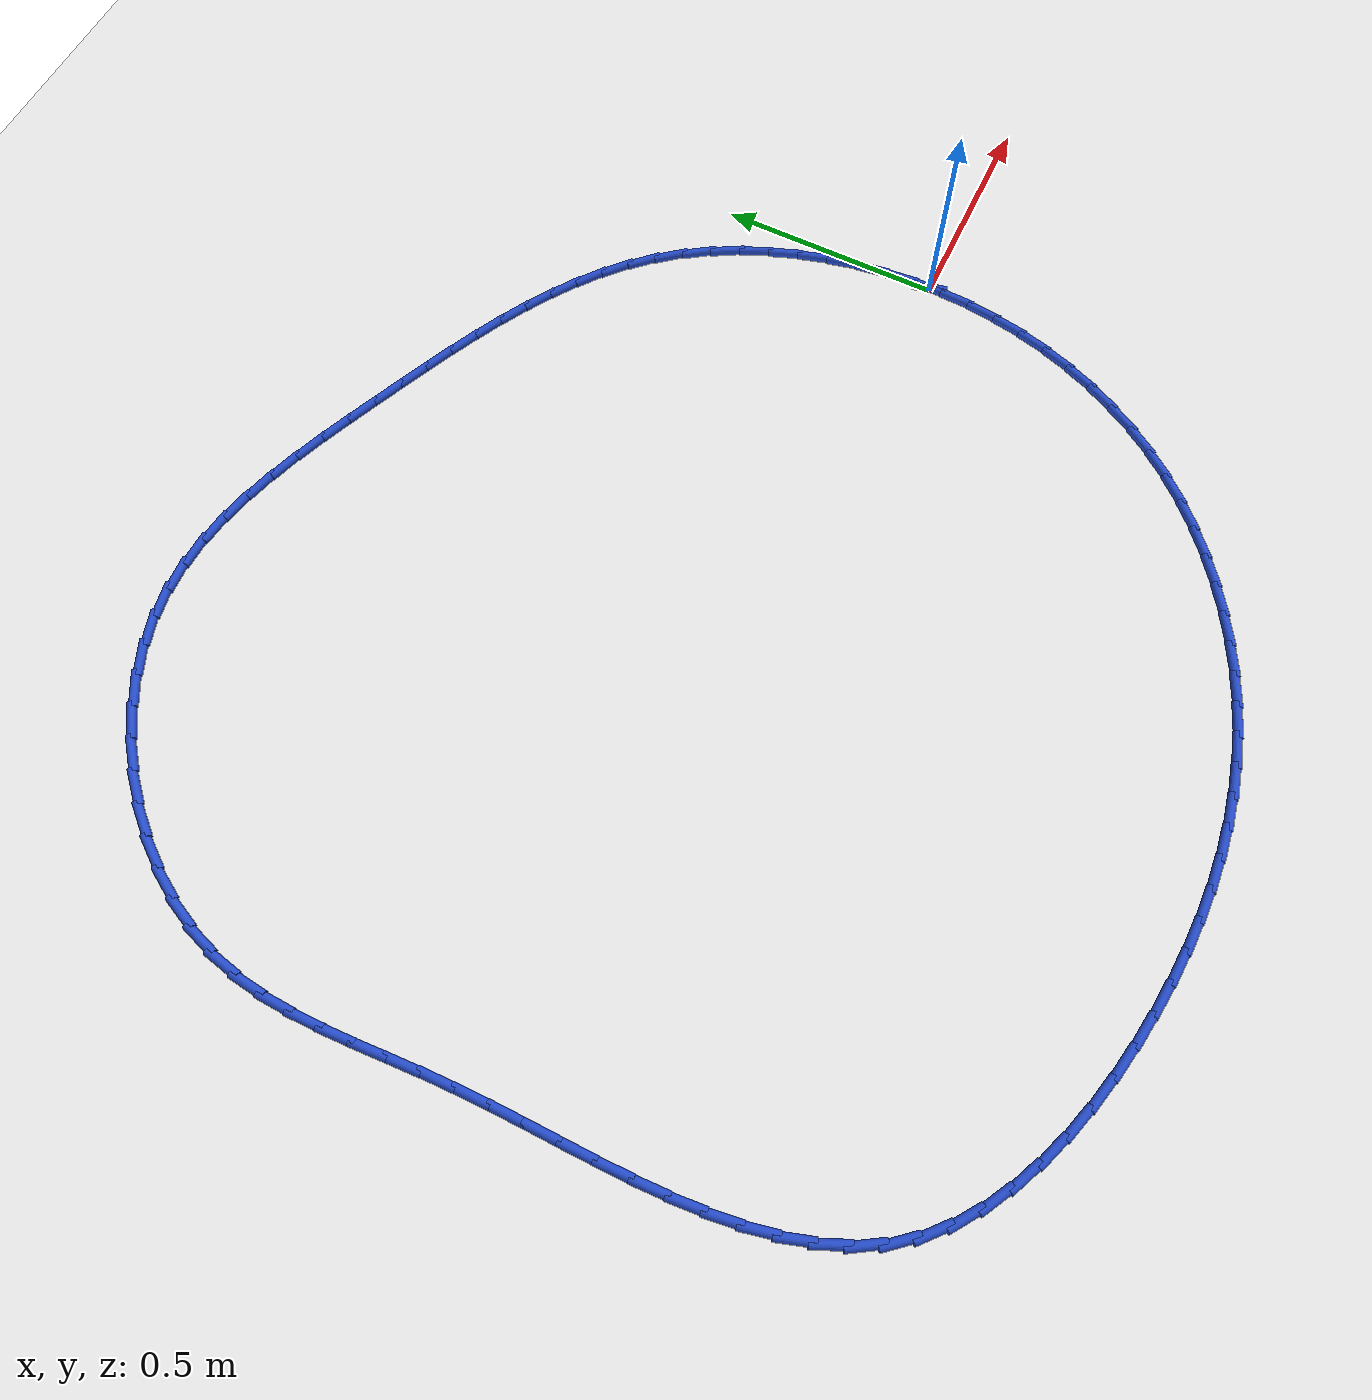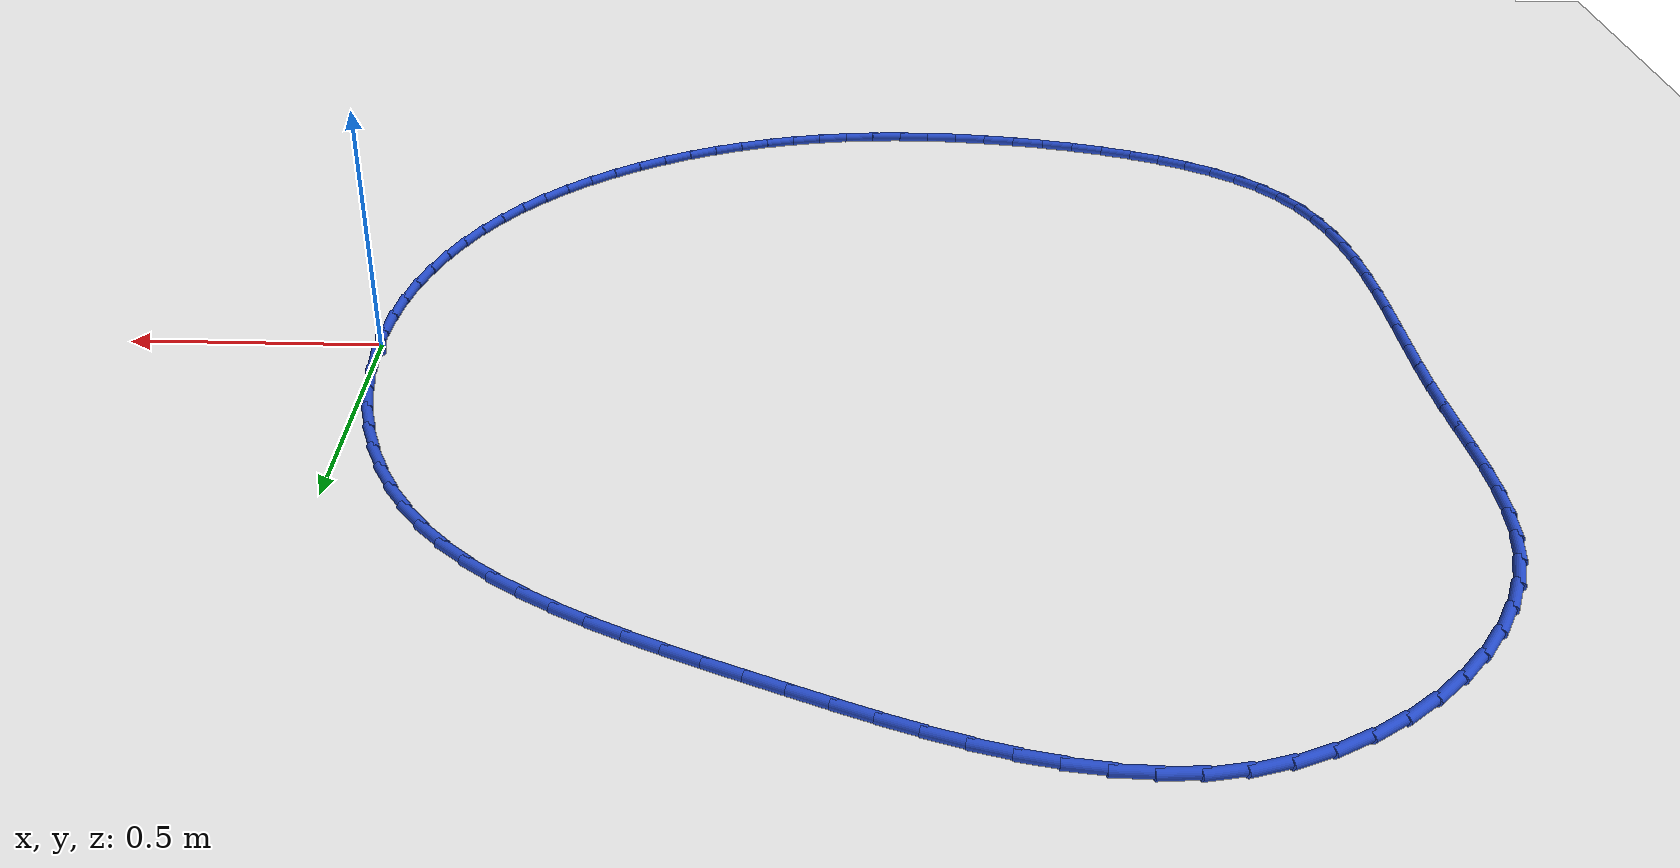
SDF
<sdf version="1.6">
 <world name="default">
  <light name="sun" type="directional">
   <pose>0 0 10 0 -0 0</pose>
   <diffuse>0.8 0.8 0.8 1</diffuse>
   <specular>0.2 0.2 0.2 1</specular>
   <attenuation>
    <range>1000</range>
    <constant>0.9</constant>
    <linear>0.01</linear>
    <quadratic>0.001</quadratic>
   </attenuation>
   <direction>-0.5 0.1 -0.9</direction>
  </light>
  <model name="ground_plane">
   <static>1</static>
   <link name="link">
    <collision name="collision">
     <geometry><plane><normal>0 0 1</normal><size>100 100</size></plane></geometry>
     <surface><friction><ode><mu>100</mu><mu2>50</mu2></ode></friction></surface>
    </collision>
    <visual name="visual">
     <cast_shadows>0</cast_shadows>
     <geometry><plane><normal>0 0 1</normal><size>100 100</size></plane></geometry>
     <material>
      <script><uri>file://media/materials/scripts/gazebo.material</uri><name>Gazebo/WhiteGlow</name></script>
     </material>
    </visual>
   </link>
  </model>
  <gravity>0 0 -9.8</gravity>
  <magnetic_field>6e-06 2.3e-05 -4.2e-05</magnetic_field>
  <atmosphere type="adiabatic"/>
  <physics name="default_physics" default="0" type="ode">
   <max_step_size>0.001</max_step_size>
   <real_time_factor>1</real_time_factor>
   <real_time_update_rate>1000</real_time_update_rate>
  </physics>
  <scene><ambient>0.4 0.4 0.4 1</ambient><background>0.7 0.7 0.7 1</background><shadows>1</shadows></scene>
  <spherical_coordinates>
   <surface_model>EARTH_WGS84</surface_model>
   <latitude_deg>0</latitude_deg>
   <longitude_deg>0</longitude_deg>
   <elevation>0</elevation>
   <heading_deg>0</heading_deg>
  </spherical_coordinates>
  <model name="line">
   <link name="link_0">
    <pose>-2.42861286636753e-17 -1.3877787807814457e-17 0.01 0 1.57 -1.5395623672730891</pose>
    <collision name="collision">
     <geometry><cylinder><radius>0.01</radius><length>0.08</length></cylinder></geometry>
    </collision>
    <visual name="visual">
     <material>
      <script><name>Gazebo/Blue</name><uri>file://media/materials/scripts/gazebo.material</uri></script>
     </material>
     <geometry><cylinder><radius>0.01</radius><length>0.08</length></cylinder></geometry>
    </visual>
   </link>
   <link name="link_1">
    <pose>-0.002146522956263678 0.06870166072143419 0.01 0 1.57 -1.4737865795090244</pose>
    <collision name="collision">
     <geometry><cylinder><radius>0.01</radius><length>0.08</length></cylinder></geometry>
    </collision>
    <visual name="visual">
     <material>
      <script><name>Gazebo/Blue</name><uri>file://media/materials/scripts/gazebo.material</uri></script>
     </material>
     <geometry><cylinder><radius>0.01</radius><length>0.08</length></cylinder></geometry>
    </visual>
   </link>
   <link name="link_2">
    <pose>-0.008818383371056589 0.13726093516844107 0.01 0 1.57 -1.4080252278282452</pose>
    <collision name="collision">
     <geometry><cylinder><radius>0.01</radius><length>0.08</length></cylinder></geometry>
    </collision>
    <visual name="visual">
     <material>
      <script><name>Gazebo/Blue</name><uri>file://media/materials/scripts/gazebo.material</uri></script>
     </material>
     <geometry><cylinder><radius>0.01</radius><length>0.08</length></cylinder></geometry>
    </visual>
   </link>
   <link name="link_3">
    <pose>-0.01997358780285876 0.20518769318416172 0.01 0 1.57 -1.3414376390002505</pose>
    <collision name="collision">
     <geometry><cylinder><radius>0.01</radius><length>0.08</length></cylinder></geometry>
    </collision>
    <visual name="visual">
     <material>
      <script><name>Gazebo/Blue</name><uri>file://media/materials/scripts/gazebo.material</uri></script>
     </material>
     <geometry><cylinder><radius>0.01</radius><length>0.08</length></cylinder></geometry>
    </visual>
   </link>
   <link name="link_4">
    <pose>-0.0355701428101502 0.27199180461173705 0.01 0 1.57 -1.2731798817575348</pose>
    <collision name="collision">
     <geometry><cylinder><radius>0.01</radius><length>0.08</length></cylinder></geometry>
    </collision>
    <visual name="visual">
     <material>
      <script><name>Gazebo/Blue</name><uri>file://media/materials/scripts/gazebo.material</uri></script>
     </material>
     <geometry><cylinder><radius>0.01</radius><length>0.08</length></cylinder></geometry>
    </visual>
   </link>
   <link name="link_5">
    <pose>-0.05556605495141092 0.33718313929430827 0.01 0 1.57 -1.202401103345851</pose>
    <collision name="collision">
     <geometry><cylinder><radius>0.01</radius><length>0.08</length></cylinder></geometry>
    </collision>
    <visual name="visual">
     <material>
      <script><name>Gazebo/Blue</name><uri>file://media/materials/scripts/gazebo.material</uri></script>
     </material>
     <geometry><cylinder><radius>0.01</radius><length>0.08</length></cylinder></geometry>
    </visual>
   </link>
   <link name="link_6">
    <pose>-0.07991933078512092 0.4002715670750162 0.01 0 1.57 -1.1282474883373577</pose>
    <collision name="collision">
     <geometry><cylinder><radius>0.01</radius><length>0.08</length></cylinder></geometry>
    </collision>
    <visual name="visual">
     <material>
      <script><name>Gazebo/Blue</name><uri>file://media/materials/scripts/gazebo.material</uri></script>
     </material>
     <geometry><cylinder><radius>0.01</radius><length>0.08</length></cylinder></geometry>
    </visual>
   </link>
   <link name="link_7">
    <pose>-0.10858797686976024 0.4607669577970021 0.01 0 1.57 -1.0498789040727794</pose>
    <collision name="collision">
     <geometry><cylinder><radius>0.01</radius><length>0.08</length></cylinder></geometry>
    </collision>
    <visual name="visual">
     <material>
      <script><name>Gazebo/Blue</name><uri>file://media/materials/scripts/gazebo.material</uri></script>
     </material>
     <geometry><cylinder><radius>0.01</radius><length>0.08</length></cylinder></geometry>
    </visual>
   </link>
   <link name="link_8">
    <pose>-0.1415299997638088 0.5181791813034069 0.01 0 1.57 -0.9665045339949951</pose>
    <collision name="collision">
     <geometry><cylinder><radius>0.01</radius><length>0.08</length></cylinder></geometry>
    </collision>
    <visual name="visual">
     <material>
      <script><name>Gazebo/Blue</name><uri>file://media/materials/scripts/gazebo.material</uri></script>
     </material>
     <geometry><cylinder><radius>0.01</radius><length>0.08</length></cylinder></geometry>
    </visual>
   </link>
   <link name="link_9">
    <pose>-0.17870340602574664 0.5720181074373716 0.01 0 1.57 -0.8781315034492685</pose>
    <collision name="collision">
     <geometry><cylinder><radius>0.01</radius><length>0.08</length></cylinder></geometry>
    </collision>
    <visual name="visual">
     <material>
      <script><name>Gazebo/Blue</name><uri>file://media/materials/scripts/gazebo.material</uri></script>
     </material>
     <geometry><cylinder><radius>0.01</radius><length>0.08</length></cylinder></geometry>
    </visual>
   </link>
   <link name="link_10">
    <pose>-0.22004858338338074 0.6218420168754039 0.01 0 1.57 -0.7920899931918045</pose>
    <collision name="collision">
     <geometry><cylinder><radius>0.01</radius><length>0.08</length></cylinder></geometry>
    </collision>
    <visual name="visual">
     <material>
      <script><name>Gazebo/Blue</name><uri>file://media/materials/scripts/gazebo.material</uri></script>
     </material>
     <geometry><cylinder><radius>0.01</radius><length>0.08</length></cylinder></geometry>
    </visual>
   </link>
   <link name="link_11">
    <pose>-0.26531910006360054 0.6677225097018832 0.01 0 1.57 -0.7140023959267595</pose>
    <collision name="collision">
     <geometry><cylinder><radius>0.01</radius><length>0.08</length></cylinder></geometry>
    </collision>
    <visual name="visual">
     <material>
      <script><name>Gazebo/Blue</name><uri>file://media/materials/scripts/gazebo.material</uri></script>
     </material>
     <geometry><cylinder><radius>0.01</radius><length>0.08</length></cylinder></geometry>
    </visual>
   </link>
   <link name="link_12">
    <pose>-0.314156026079334 0.710040294612944 0.01 0 1.57 -0.6448265219408634</pose>
    <collision name="collision">
     <geometry><cylinder><radius>0.01</radius><length>0.08</length></cylinder></geometry>
    </collision>
    <visual name="visual">
     <material>
      <script><name>Gazebo/Blue</name><uri>file://media/materials/scripts/gazebo.material</uri></script>
     </material>
     <geometry><cylinder><radius>0.01</radius><length>0.08</length></cylinder></geometry>
    </visual>
   </link>
   <link name="link_13">
    <pose>-0.36619888635469705 0.7491803257077453 0.01 0 1.57 -0.5849062763282531</pose>
    <collision name="collision">
     <geometry><cylinder><radius>0.01</radius><length>0.08</length></cylinder></geometry>
    </collision>
    <visual name="visual">
     <material>
      <script><name>Gazebo/Blue</name><uri>file://media/materials/scripts/gazebo.material</uri></script>
     </material>
     <geometry><cylinder><radius>0.01</radius><length>0.08</length></cylinder></geometry>
    </visual>
   </link>
   <link name="link_14">
    <pose>-0.42108720581380543 0.7855275570854464 0.01 0 1.57 -0.5341857826272508</pose>
    <collision name="collision">
     <geometry><cylinder><radius>0.01</radius><length>0.08</length></cylinder></geometry>
    </collision>
    <visual name="visual">
     <material>
      <script><name>Gazebo/Blue</name><uri>file://media/materials/scripts/gazebo.material</uri></script>
     </material>
     <geometry><cylinder><radius>0.01</radius><length>0.08</length></cylinder></geometry>
    </visual>
   </link>
   <link name="link_15">
    <pose>-0.47846050938077467 0.8194669428452063 0.01 0 1.57 -0.4923662037060185</pose>
    <collision name="collision">
     <geometry><cylinder><radius>0.01</radius><length>0.08</length></cylinder></geometry>
    </collision>
    <visual name="visual">
     <material>
      <script><name>Gazebo/Blue</name><uri>file://media/materials/scripts/gazebo.material</uri></script>
     </material>
     <geometry><cylinder><radius>0.01</radius><length>0.08</length></cylinder></geometry>
    </visual>
   </link>
   <link name="link_16">
    <pose>-0.5379583219797208 0.8513834370861841 0.01 0 1.57 -0.4590355832230544</pose>
    <collision name="collision">
     <geometry><cylinder><radius>0.01</radius><length>0.08</length></cylinder></geometry>
    </collision>
    <visual name="visual">
     <material>
      <script><name>Gazebo/Blue</name><uri>file://media/materials/scripts/gazebo.material</uri></script>
     </material>
     <geometry><cylinder><radius>0.01</radius><length>0.08</length></cylinder></geometry>
    </visual>
   </link>
   <link name="link_17">
    <pose>-0.5992201685347596 0.8816619939075389 0.01 0 1.57 -0.4337629708069131</pose>
    <collision name="collision">
     <geometry><cylinder><radius>0.01</radius><length>0.08</length></cylinder></geometry>
    </collision>
    <visual name="visual">
     <material>
      <script><name>Gazebo/Blue</name><uri>file://media/materials/scripts/gazebo.material</uri></script>
     </material>
     <geometry><cylinder><radius>0.01</radius><length>0.08</length></cylinder></geometry>
    </visual>
   </link>
   <link name="link_18">
    <pose>-0.6618855739700065 0.9106875674084296 0.01 0 1.57 -0.41616012717726636</pose>
    <collision name="collision">
     <geometry><cylinder><radius>0.01</radius><length>0.08</length></cylinder></geometry>
    </collision>
    <visual name="visual">
     <material>
      <script><name>Gazebo/Blue</name><uri>file://media/materials/scripts/gazebo.material</uri></script>
     </material>
     <geometry><cylinder><radius>0.01</radius><length>0.08</length></cylinder></geometry>
    </visual>
   </link>
   <link name="link_19">
    <pose>-0.7255940632095779 0.938845111688016 0.01 0 1.57 -0.4059184441146806</pose>
    <collision name="collision">
     <geometry><cylinder><radius>0.01</radius><length>0.08</length></cylinder></geometry>
    </collision>
    <visual name="visual">
     <material>
      <script><name>Gazebo/Blue</name><uri>file://media/materials/scripts/gazebo.material</uri></script>
     </material>
     <geometry><cylinder><radius>0.01</radius><length>0.08</length></cylinder></geometry>
    </visual>
   </link>
   <link name="link_20">
    <pose>-0.7899851611775887 0.9665195808454563 0.01 0 1.57 -0.40228182128196494</pose>
    <collision name="collision">
     <geometry><cylinder><radius>0.01</radius><length>0.08</length></cylinder></geometry>
    </collision>
    <visual name="visual">
     <material>
      <script><name>Gazebo/Blue</name><uri>file://media/materials/scripts/gazebo.material</uri></script>
     </material>
     <geometry><cylinder><radius>0.01</radius><length>0.08</length></cylinder></geometry>
    </visual>
   </link>
   <link name="link_21">
    <pose>-0.8547084073949018 0.9940583853706875 0.01 0 1.57 -0.39598864195301886</pose>
    <collision name="collision">
     <geometry><cylinder><radius>0.01</radius><length>0.08</length></cylinder></geometry>
    </collision>
    <visual name="visual">
     <material>
      <script><name>Gazebo/Blue</name><uri>file://media/materials/scripts/gazebo.material</uri></script>
     </material>
     <geometry><cylinder><radius>0.01</radius><length>0.08</length></cylinder></geometry>
    </visual>
   </link>
   <link name="link_22">
    <pose>-0.9195811321841941 1.021179906701952 0.01 0 1.57 -0.3793129558546658</pose>
    <collision name="collision">
     <geometry><cylinder><radius>0.01</radius><length>0.08</length></cylinder></geometry>
    </collision>
    <visual name="visual">
     <material>
      <script><name>Gazebo/Blue</name><uri>file://media/materials/scripts/gazebo.material</uri></script>
     </material>
     <geometry><cylinder><radius>0.01</radius><length>0.08</length></cylinder></geometry>
    </visual>
   </link>
   <link name="link_23">
    <pose>-0.9845596711559174 1.0470814109159585 0.01 0 1.57 -0.351624238901066</pose>
    <collision name="collision">
     <geometry><cylinder><radius>0.01</radius><length>0.08</length></cylinder></geometry>
    </collision>
    <visual name="visual">
     <material>
      <script><name>Gazebo/Blue</name><uri>file://media/materials/scripts/gazebo.material</uri></script>
     </material>
     <geometry><cylinder><radius>0.01</radius><length>0.08</length></cylinder></geometry>
    </visual>
   </link>
   <link name="link_24">
    <pose>-1.0496045534130543 1.0709444431523851 0.01 0 1.57 -0.31225391340641034</pose>
    <collision name="collision">
     <geometry><cylinder><radius>0.01</radius><length>0.08</length></cylinder></geometry>
    </collision>
    <visual name="visual">
     <material>
      <script><name>Gazebo/Blue</name><uri>file://media/materials/scripts/gazebo.material</uri></script>
     </material>
     <geometry><cylinder><radius>0.01</radius><length>0.08</length></cylinder></geometry>
    </visual>
   </link>
   <link name="link_25">
    <pose>-1.1146763080585882 1.0919505485509098 0.01 0 1.57 -0.2603385510126924</pose>
    <collision name="collision">
     <geometry><cylinder><radius>0.01</radius><length>0.08</length></cylinder></geometry>
    </collision>
    <visual name="visual">
     <material>
      <script><name>Gazebo/Blue</name><uri>file://media/materials/scripts/gazebo.material</uri></script>
     </material>
     <geometry><cylinder><radius>0.01</radius><length>0.08</length></cylinder></geometry>
    </visual>
   </link>
   <link name="link_26">
    <pose>-1.1797354641955013 1.1092812722512098 0.01 0 1.57 -0.1949607661534128</pose>
    <collision name="collision">
     <geometry><cylinder><radius>0.01</radius><length>0.08</length></cylinder></geometry>
    </collision>
    <visual name="visual">
     <material>
      <script><name>Gazebo/Blue</name><uri>file://media/materials/scripts/gazebo.material</uri></script>
     </material>
     <geometry><cylinder><radius>0.01</radius><length>0.08</length></cylinder></geometry>
    </visual>
   </link>
   <link name="link_27">
    <pose>-1.2447425509267773 1.122118159392963 0.01 0 1.57 -0.11539862419344818</pose>
    <collision name="collision">
     <geometry><cylinder><radius>0.01</radius><length>0.08</length></cylinder></geometry>
    </collision>
    <visual name="visual">
     <material>
      <script><name>Gazebo/Blue</name><uri>file://media/materials/scripts/gazebo.material</uri></script>
     </material>
     <geometry><cylinder><radius>0.01</radius><length>0.08</length></cylinder></geometry>
    </visual>
   </link>
   <link name="link_28">
    <pose>-1.3096580973553975 1.1296427551158472 0.01 0 1.57 -0.021511838073589078</pose>
    <collision name="collision">
     <geometry><cylinder><radius>0.01</radius><length>0.08</length></cylinder></geometry>
    </collision>
    <visual name="visual">
     <material>
      <script><name>Gazebo/Blue</name><uri>file://media/materials/scripts/gazebo.material</uri></script>
     </material>
     <geometry><cylinder><radius>0.01</radius><length>0.08</length></cylinder></geometry>
    </visual>
   </link>
   <link name="link_29">
    <pose>-1.374442632584345 1.131036604559539 0.01 0 1.57 0.08576653542074875</pose>
    <collision name="collision">
     <geometry><cylinder><radius>0.01</radius><length>0.08</length></cylinder></geometry>
    </collision>
    <visual name="visual">
     <material>
      <script><name>Gazebo/Blue</name><uri>file://media/materials/scripts/gazebo.material</uri></script>
     </material>
     <geometry><cylinder><radius>0.01</radius><length>0.08</length></cylinder></geometry>
    </visual>
   </link>
   <link name="link_30">
    <pose>-1.4390566857166038 1.1254812528637177 0.01 0 1.57 0.2035609977178998</pose>
    <collision name="collision">
     <geometry><cylinder><radius>0.01</radius><length>0.08</length></cylinder></geometry>
    </collision>
    <visual name="visual">
     <material>
      <script><name>Gazebo/Blue</name><uri>file://media/materials/scripts/gazebo.material</uri></script>
     </material>
     <geometry><cylinder><radius>0.01</radius><length>0.08</length></cylinder></geometry>
    </visual>
   </link>
   <link name="link_31">
    <pose>-1.5034468971444626 1.1121898219940298 0.01 0 1.57 0.31938339168010094</pose>
    <collision name="collision">
     <geometry><cylinder><radius>0.01</radius><length>0.08</length></cylinder></geometry>
    </collision>
    <visual name="visual">
     <material>
      <script><name>Gazebo/Blue</name><uri>file://media/materials/scripts/gazebo.material</uri></script>
     </material>
     <geometry><cylinder><radius>0.01</radius><length>0.08</length></cylinder></geometry>
    </visual>
   </link>
   <link name="link_32">
    <pose>-1.5672449682944598 1.0910914667525882 0.01 0 1.57 0.42457369344003687</pose>
    <collision name="collision">
     <geometry><cylinder><radius>0.01</radius><length>0.08</length></cylinder></geometry>
    </collision>
    <visual name="visual">
     <material>
      <script><name>Gazebo/Blue</name><uri>file://media/materials/scripts/gazebo.material</uri></script>
     </material>
     <geometry><cylinder><radius>0.01</radius><length>0.08</length></cylinder></geometry>
    </visual>
   </link>
   <link name="link_33">
    <pose>-1.6297701422795183 1.062825734864922 0.01 0 1.57 0.5211165461167651</pose>
    <collision name="collision">
     <geometry><cylinder><radius>0.01</radius><length>0.08</length></cylinder></geometry>
    </collision>
    <visual name="visual">
     <material>
      <script><name>Gazebo/Blue</name><uri>file://media/materials/scripts/gazebo.material</uri></script>
     </material>
     <geometry><cylinder><radius>0.01</radius><length>0.08</length></cylinder></geometry>
    </visual>
   </link>
   <link name="link_34">
    <pose>-1.6903282696420179 1.0280626228778083 0.01 0 1.57 0.6114517601170745</pose>
    <collision name="collision">
     <geometry><cylinder><radius>0.01</radius><length>0.08</length></cylinder></geometry>
    </collision>
    <visual name="visual">
     <material>
      <script><name>Gazebo/Blue</name><uri>file://media/materials/scripts/gazebo.material</uri></script>
     </material>
     <geometry><cylinder><radius>0.01</radius><length>0.08</length></cylinder></geometry>
    </visual>
   </link>
   <link name="link_35">
    <pose>-1.7482252009243386 0.9874721273380244 0.01 0 1.57 0.6979386285589585</pose>
    <collision name="collision">
     <geometry><cylinder><radius>0.01</radius><length>0.08</length></cylinder></geometry>
    </collision>
    <visual name="visual">
     <material>
      <script><name>Gazebo/Blue</name><uri>file://media/materials/scripts/gazebo.material</uri></script>
     </material>
     <geometry><cylinder><radius>0.01</radius><length>0.08</length></cylinder></geometry>
    </visual>
   </link>
   <link name="link_36">
    <pose>-1.8027667866688608 0.9417242447923474 0.01 0 1.57 0.7828485365805555</pose>
    <collision name="collision">
     <geometry><cylinder><radius>0.01</radius><length>0.08</length></cylinder></geometry>
    </collision>
    <visual name="visual">
     <material>
      <script><name>Gazebo/Blue</name><uri>file://media/materials/scripts/gazebo.material</uri></script>
     </material>
     <geometry><cylinder><radius>0.01</radius><length>0.08</length></cylinder></geometry>
    </visual>
   </link>
   <link name="link_37">
    <pose>-1.8532588774179652 0.8914889717875546 0.01 0 1.57 0.8684146224471531</pose>
    <collision name="collision">
     <geometry><cylinder><radius>0.01</radius><length>0.08</length></cylinder></geometry>
    </collision>
    <visual name="visual">
     <material>
      <script><name>Gazebo/Blue</name><uri>file://media/materials/scripts/gazebo.material</uri></script>
     </material>
     <geometry><cylinder><radius>0.01</radius><length>0.08</length></cylinder></geometry>
    </visual>
   </link>
   <link name="link_38">
    <pose>-1.8990073237140317 0.8374363048704231 0.01 0 1.57 0.9569023182013043</pose>
    <collision name="collision">
     <geometry><cylinder><radius>0.01</radius><length>0.08</length></cylinder></geometry>
    </collision>
    <visual name="visual">
     <material>
      <script><name>Gazebo/Blue</name><uri>file://media/materials/scripts/gazebo.material</uri></script>
     </material>
     <geometry><cylinder><radius>0.01</radius><length>0.08</length></cylinder></geometry>
    </visual>
   </link>
   <link name="link_39">
    <pose>-1.939317976099441 0.7802362405877302 0.01 0 1.57 1.050674298360861</pose>
    <collision name="collision">
     <geometry><cylinder><radius>0.01</radius><length>0.08</length></cylinder></geometry>
    </collision>
    <visual name="visual">
     <material>
      <script><name>Gazebo/Blue</name><uri>file://media/materials/scripts/gazebo.material</uri></script>
     </material>
     <geometry><cylinder><radius>0.01</radius><length>0.08</length></cylinder></geometry>
    </visual>
   </link>
   <link name="link_40">
    <pose>-1.9734966851165732 0.7205587754862534 0.01 0 1.57 1.152218832916308</pose>
    <collision name="collision">
     <geometry><cylinder><radius>0.01</radius><length>0.08</length></cylinder></geometry>
    </collision>
    <visual name="visual">
     <material>
      <script><name>Gazebo/Blue</name><uri>file://media/materials/scripts/gazebo.material</uri></script>
     </material>
     <geometry><cylinder><radius>0.01</radius><length>0.08</length></cylinder></geometry>
    </visual>
   </link>
   <link name="link_41">
    <pose>-2.0008493013078086 0.6590739061127697 0.01 0 1.57 1.2636855243712426</pose>
    <collision name="collision">
     <geometry><cylinder><radius>0.01</radius><length>0.08</length></cylinder></geometry>
    </collision>
    <visual name="visual">
     <material>
      <script><name>Gazebo/Blue</name><uri>file://media/materials/scripts/gazebo.material</uri></script>
     </material>
     <geometry><cylinder><radius>0.01</radius><length>0.08</length></cylinder></geometry>
    </visual>
   </link>
   <link name="link_42">
    <pose>-2.0207133600381963 0.59643986733412 0.01 0 1.57 1.3746183666336889</pose>
    <collision name="collision">
     <geometry><cylinder><radius>0.01</radius><length>0.08</length></cylinder></geometry>
    </collision>
    <visual name="visual">
     <material>
      <script><name>Gazebo/Blue</name><uri>file://media/materials/scripts/gazebo.material</uri></script>
     </material>
     <geometry><cylinder><radius>0.01</radius><length>0.08</length></cylinder></geometry>
    </visual>
   </link>
   <link name="link_43">
    <pose>-2.033324708823227 0.5329814327853517 0.01 0 1.57 1.4685822063802256</pose>
    <collision name="collision">
     <geometry><cylinder><radius>0.01</radius><length>0.08</length></cylinder></geometry>
    </collision>
    <visual name="visual">
     <material>
      <script><name>Gazebo/Blue</name><uri>file://media/materials/scripts/gazebo.material</uri></script>
     </material>
     <geometry><cylinder><radius>0.01</radius><length>0.08</length></cylinder></geometry>
    </visual>
   </link>
   <link name="link_44">
    <pose>-2.039923216497913 0.46865067471281285 0.01 0 1.57 1.5420249604592282</pose>
    <collision name="collision">
     <geometry><cylinder><radius>0.01</radius><length>0.08</length></cylinder></geometry>
    </collision>
    <visual name="visual">
     <material>
      <script><name>Gazebo/Blue</name><uri>file://media/materials/scripts/gazebo.material</uri></script>
     </material>
     <geometry><cylinder><radius>0.01</radius><length>0.08</length></cylinder></geometry>
    </visual>
   </link>
   <link name="link_45">
    <pose>-2.041801660614953 0.4033800251897073 0.01 0 1.57 -1.5474317488982743</pose>
    <collision name="collision">
     <geometry><cylinder><radius>0.01</radius><length>0.08</length></cylinder></geometry>
    </collision>
    <visual name="visual">
     <material>
      <script><name>Gazebo/Blue</name><uri>file://media/materials/scripts/gazebo.material</uri></script>
     </material>
     <geometry><cylinder><radius>0.01</radius><length>0.08</length></cylinder></geometry>
    </visual>
   </link>
   <link name="link_46">
    <pose>-2.040252818727047 0.3371019162892384 0.01 0 1.57 -1.5161636072060811</pose>
    <collision name="collision">
     <geometry><cylinder><radius>0.01</radius><length>0.08</length></cylinder></geometry>
    </collision>
    <visual name="visual">
     <material>
      <script><name>Gazebo/Blue</name><uri>file://media/materials/scripts/gazebo.material</uri></script>
     </material>
     <geometry><cylinder><radius>0.01</radius><length>0.08</length></cylinder></geometry>
    </visual>
   </link>
   <link name="link_47">
    <pose>-2.036569468386894 0.2697487800846098 0.01 0 1.57 -1.504828488742598</pose>
    <collision name="collision">
     <geometry><cylinder><radius>0.01</radius><length>0.08</length></cylinder></geometry>
    </collision>
    <visual name="visual">
     <material>
      <script><name>Gazebo/Blue</name><uri>file://media/materials/scripts/gazebo.material</uri></script>
     </material>
     <geometry><cylinder><radius>0.01</radius><length>0.08</length></cylinder></geometry>
    </visual>
   </link>
   <link name="link_48">
    <pose>-2.0320443871471934 0.20125304864902538 0.01 0 1.57 -1.512416684627763</pose>
    <collision name="collision">
     <geometry><cylinder><radius>0.01</radius><length>0.08</length></cylinder></geometry>
    </collision>
    <visual name="visual">
     <material>
      <script><name>Gazebo/Blue</name><uri>file://media/materials/scripts/gazebo.material</uri></script>
     </material>
     <geometry><cylinder><radius>0.01</radius><length>0.08</length></cylinder></geometry>
    </visual>
   </link>
   <link name="link_49">
    <pose>-2.0279703525606454 0.131547154055688 0.01 0 1.57 -1.5364727447627293</pose>
    <collision name="collision">
     <geometry><cylinder><radius>0.01</radius><length>0.08</length></cylinder></geometry>
    </collision>
    <visual name="visual">
     <material>
      <script><name>Gazebo/Blue</name><uri>file://media/materials/scripts/gazebo.material</uri></script>
     </material>
     <geometry><cylinder><radius>0.01</radius><length>0.08</length></cylinder></geometry>
    </visual>
   </link>
   <link name="link_50">
    <pose>-2.025533958008676 0.06059192287776127 0.01 0 1.57 -1.559733634300105</pose>
    <collision name="collision">
     <geometry><cylinder><radius>0.01</radius><length>0.08</length></cylinder></geometry>
    </collision>
    <visual name="visual">
     <material>
      <script><name>Gazebo/Blue</name><uri>file://media/materials/scripts/gazebo.material</uri></script>
     </material>
     <geometry><cylinder><radius>0.01</radius><length>0.08</length></cylinder></geometry>
    </visual>
   </link>
   <link name="link_51">
    <pose>-2.0247382165828776 -0.01133531943902497 0.01 0 1.57 1.5693081618453835</pose>
    <collision name="collision">
     <geometry><cylinder><radius>0.01</radius><length>0.08</length></cylinder></geometry>
    </collision>
    <visual name="visual">
     <material>
      <script><name>Gazebo/Blue</name><uri>file://media/materials/scripts/gazebo.material</uri></script>
     </material>
     <geometry><cylinder><radius>0.01</radius><length>0.08</length></cylinder></geometry>
    </visual>
   </link>
   <link name="link_52">
    <pose>-2.024845995531264 -0.08375932650767645 0.01 0 1.57 1.5671680442607656</pose>
    <collision name="collision">
     <geometry><cylinder><radius>0.01</radius><length>0.08</length></cylinder></geometry>
    </collision>
    <visual name="visual">
     <material>
      <script><name>Gazebo/Blue</name><uri>file://media/materials/scripts/gazebo.material</uri></script>
     </material>
     <geometry><cylinder><radius>0.01</radius><length>0.08</length></cylinder></geometry>
    </visual>
   </link>
   <link name="link_53">
    <pose>-2.025108838532777 -0.15620182392791016 0.01 0 1.57 -1.5662042945203285</pose>
    <collision name="collision">
     <geometry><cylinder><radius>0.01</radius><length>0.08</length></cylinder></geometry>
    </collision>
    <visual name="visual">
     <material>
      <script><name>Gazebo/Blue</name><uri>file://media/materials/scripts/gazebo.material</uri></script>
     </material>
     <geometry><cylinder><radius>0.01</radius><length>0.08</length></cylinder></geometry>
    </visual>
   </link>
   <link name="link_54">
    <pose>-2.024778289266356 -0.22818453729944327 0.01 0 1.57 -1.5472605794830572</pose>
    <collision name="collision">
     <geometry><cylinder><radius>0.01</radius><length>0.08</length></cylinder></geometry>
    </collision>
    <visual name="visual">
     <material>
      <script><name>Gazebo/Blue</name><uri>file://media/materials/scripts/gazebo.material</uri></script>
     </material>
     <geometry><cylinder><radius>0.01</radius><length>0.08</length></cylinder></geometry>
    </visual>
   </link>
   <link name="link_55">
    <pose>-2.023105891410942 -0.29922919222199273 0.01 0 1.57 -1.5168090079355285</pose>
    <collision name="collision">
     <geometry><cylinder><radius>0.01</radius><length>0.08</length></cylinder></geometry>
    </collision>
    <visual name="visual">
     <material>
      <script><name>Gazebo/Blue</name><uri>file://media/materials/scripts/gazebo.material</uri></script>
     </material>
     <geometry><cylinder><radius>0.01</radius><length>0.08</length></cylinder></geometry>
    </visual>
   </link>
   <link name="link_56">
    <pose>-2.0193431886454745 -0.3688575142952757 0.01 0 1.57 -1.4736411619282415</pose>
    <collision name="collision">
     <geometry><cylinder><radius>0.01</radius><length>0.08</length></cylinder></geometry>
    </collision>
    <visual name="visual">
     <material>
      <script><name>Gazebo/Blue</name><uri>file://media/materials/scripts/gazebo.material</uri></script>
     </material>
     <geometry><cylinder><radius>0.01</radius><length>0.08</length></cylinder></geometry>
    </visual>
   </link>
   <link name="link_57">
    <pose>-2.012741724648894 -0.43659122911900916 0.01 0 1.57 -1.416157279073452</pose>
    <collision name="collision">
     <geometry><cylinder><radius>0.01</radius><length>0.08</length></cylinder></geometry>
    </collision>
    <visual name="visual">
     <material>
      <script><name>Gazebo/Blue</name><uri>file://media/materials/scripts/gazebo.material</uri></script>
     </material>
     <geometry><cylinder><radius>0.01</radius><length>0.08</length></cylinder></geometry>
    </visual>
   </link>
   <link name="link_58">
    <pose>-2.00255304310014 -0.5019520622929095 0.01 0 1.57 -1.3424936363620703</pose>
    <collision name="collision">
     <geometry><cylinder><radius>0.01</radius><length>0.08</length></cylinder></geometry>
    </collision>
    <visual name="visual">
     <material>
      <script><name>Gazebo/Blue</name><uri>file://media/materials/scripts/gazebo.material</uri></script>
     </material>
     <geometry><cylinder><radius>0.01</radius><length>0.08</length></cylinder></geometry>
    </visual>
   </link>
   <link name="link_59">
    <pose>-1.988028687678154 -0.5644617394166953 0.01 0 1.57 -1.2508453708516838</pose>
    <collision name="collision">
     <geometry><cylinder><radius>0.01</radius><length>0.08</length></cylinder></geometry>
    </collision>
    <visual name="visual">
     <material>
      <script><name>Gazebo/Blue</name><uri>file://media/materials/scripts/gazebo.material</uri></script>
     </material>
     <geometry><cylinder><radius>0.01</radius><length>0.08</length></cylinder></geometry>
    </visual>
   </link>
   <link name="link_60">
    <pose>-1.9684202020618757 -0.6236419860900827 0.01 0 1.57 -1.1401092731170075</pose>
    <collision name="collision">
     <geometry><cylinder><radius>0.01</radius><length>0.08</length></cylinder></geometry>
    </collision>
    <visual name="visual">
     <material>
      <script><name>Gazebo/Blue</name><uri>file://media/materials/scripts/gazebo.material</uri></script>
     </material>
     <geometry><cylinder><radius>0.01</radius><length>0.08</length></cylinder></geometry>
    </visual>
   </link>
   <link name="link_61">
    <pose>-1.9429791299302446 -0.6790145279127888 0.01 0 1.57 -1.010888814478947</pose>
    <collision name="collision">
     <geometry><cylinder><radius>0.01</radius><length>0.08</length></cylinder></geometry>
    </collision>
    <visual name="visual">
     <material>
      <script><name>Gazebo/Blue</name><uri>file://media/materials/scripts/gazebo.material</uri></script>
     </material>
     <geometry><cylinder><radius>0.01</radius><length>0.08</length></cylinder></geometry>
    </visual>
   </link>
   <link name="link_62">
    <pose>-1.9109570149622026 -0.7301010904845311 0.01 0 1.57 -0.8677540278438465</pose>
    <collision name="collision">
     <geometry><cylinder><radius>0.01</radius><length>0.08</length></cylinder></geometry>
    </collision>
    <visual name="visual">
     <material>
      <script><name>Gazebo/Blue</name><uri>file://media/materials/scripts/gazebo.material</uri></script>
     </material>
     <geometry><cylinder><radius>0.01</radius><length>0.08</length></cylinder></geometry>
    </visual>
   </link>
   <link name="link_63">
    <pose>-1.871674122612791 -0.7764524538256384 0.01 0 1.57 -0.7314036966044442</pose>
    <collision name="collision">
     <geometry><cylinder><radius>0.01</radius><length>0.08</length></cylinder></geometry>
    </collision>
    <visual name="visual">
     <material>
      <script><name>Gazebo/Blue</name><uri>file://media/materials/scripts/gazebo.material</uri></script>
     </material>
     <geometry><cylinder><radius>0.01</radius><length>0.08</length></cylinder></geometry>
    </visual>
   </link>
   <link name="link_64">
    <pose>-1.8253699763214708 -0.8180080448984268 0.01 0 1.57 -0.6142422312611907</pose>
    <collision name="collision">
     <geometry><cylinder><radius>0.01</radius><length>0.08</length></cylinder></geometry>
    </collision>
    <visual name="visual">
     <material>
      <script><name>Gazebo/Blue</name><uri>file://media/materials/scripts/gazebo.material</uri></script>
     </material>
     <geometry><cylinder><radius>0.01</radius><length>0.08</length></cylinder></geometry>
    </visual>
   </link>
   <link name="link_65">
    <pose>-1.7729398279458293 -0.854984521702419 0.01 0 1.57 -0.5149380298301044</pose>
    <collision name="collision">
     <geometry><cylinder><radius>0.01</radius><length>0.08</length></cylinder></geometry>
    </collision>
    <visual name="visual">
     <material>
      <script><name>Gazebo/Blue</name><uri>file://media/materials/scripts/gazebo.material</uri></script>
     </material>
     <geometry><cylinder><radius>0.01</radius><length>0.08</length></cylinder></geometry>
    </visual>
   </link>
   <link name="link_66">
    <pose>-1.7152930524043406 -0.8876045132316976 0.01 0 1.57 -0.4309693038378334</pose>
    <collision name="collision">
     <geometry><cylinder><radius>0.01</radius><length>0.08</length></cylinder></geometry>
    </collision>
    <visual name="visual">
     <material>
      <script><name>Gazebo/Blue</name><uri>file://media/materials/scripts/gazebo.material</uri></script>
     </material>
     <geometry><cylinder><radius>0.01</radius><length>0.08</length></cylinder></geometry>
    </visual>
   </link>
   <link name="link_67">
    <pose>-1.6533390246154775 -0.916090648480345 0.01 0 1.57 -0.35968183838189194</pose>
    <collision name="collision">
     <geometry><cylinder><radius>0.01</radius><length>0.08</length></cylinder></geometry>
    </collision>
    <visual name="visual">
     <material>
      <script><name>Gazebo/Blue</name><uri>file://media/materials/scripts/gazebo.material</uri></script>
     </material>
     <geometry><cylinder><radius>0.01</radius><length>0.08</length></cylinder></geometry>
    </visual>
   </link>
   <link name="link_68">
    <pose>-1.5879871194977142 -0.9406655564424441 0.01 0 1.57 -0.2986650636274203</pose>
    <collision name="collision">
     <geometry><cylinder><radius>0.01</radius><length>0.08</length></cylinder></geometry>
    </collision>
    <visual name="visual">
     <material>
      <script><name>Gazebo/Blue</name><uri>file://media/materials/scripts/gazebo.material</uri></script>
     </material>
     <geometry><cylinder><radius>0.01</radius><length>0.08</length></cylinder></geometry>
    </visual>
   </link>
   <link name="link_69">
    <pose>-1.5201467119695233 -0.9615518661120774 0.01 0 1.57 -0.24586591403968072</pose>
    <collision name="collision">
     <geometry><cylinder><radius>0.01</radius><length>0.08</length></cylinder></geometry>
    </collision>
    <visual name="visual">
     <material>
      <script><name>Gazebo/Blue</name><uri>file://media/materials/scripts/gazebo.material</uri></script>
     </material>
     <geometry><cylinder><radius>0.01</radius><length>0.08</length></cylinder></geometry>
    </visual>
   </link>
   <link name="link_70">
    <pose>-1.4507271769493788 -0.9789722064833276 0.01 0 1.57 -0.19957784270656062</pose>
    <collision name="collision">
     <geometry><cylinder><radius>0.01</radius><length>0.08</length></cylinder></geometry>
    </collision>
    <visual name="visual">
     <material>
      <script><name>Gazebo/Blue</name><uri>file://media/materials/scripts/gazebo.material</uri></script>
     </material>
     <geometry><cylinder><radius>0.01</radius><length>0.08</length></cylinder></geometry>
    </visual>
   </link>
   <link name="link_71">
    <pose>-1.380637889355755 -0.9931492065502773 0.01 0 1.57 -0.1582591744858209</pose>
    <collision name="collision">
     <geometry><cylinder><radius>0.01</radius><length>0.08</length></cylinder></geometry>
    </collision>
    <visual name="visual">
     <material>
      <script><name>Gazebo/Blue</name><uri>file://media/materials/scripts/gazebo.material</uri></script>
     </material>
     <geometry><cylinder><radius>0.01</radius><length>0.08</length></cylinder></geometry>
    </visual>
   </link>
   <link name="link_72">
    <pose>-1.3107714586512824 -1.0042994555913827 0.01 0 1.57 -0.11782935180882677</pose>
    <collision name="collision">
     <geometry><cylinder><radius>0.01</radius><length>0.08</length></cylinder></geometry>
    </collision>
    <visual name="visual">
     <material>
      <script><name>Gazebo/Blue</name><uri>file://media/materials/scripts/gazebo.material</uri></script>
     </material>
     <geometry><cylinder><radius>0.01</radius><length>0.08</length></cylinder></geometry>
    </visual>
   </link>
   <link name="link_73">
    <pose>-1.2415994841327413 -1.0124878749733035 0.01 0 1.57 -0.0748428531300155</pose>
    <collision name="collision">
     <geometry><cylinder><radius>0.01</radius><length>0.08</length></cylinder></geometry>
    </collision>
    <visual name="visual">
     <material>
      <script><name>Gazebo/Blue</name><uri>file://media/materials/scripts/gazebo.material</uri></script>
     </material>
     <geometry><cylinder><radius>0.01</radius><length>0.08</length></cylinder></geometry>
    </visual>
   </link>
   <link name="link_74">
    <pose>-1.1731518925153852 -1.0176202745647587 0.01 0 1.57 -0.0291534300909646</pose>
    <collision name="collision">
     <geometry><cylinder><radius>0.01</radius><length>0.08</length></cylinder></geometry>
    </collision>
    <visual name="visual">
     <material>
      <script><name>Gazebo/Blue</name><uri>file://media/materials/scripts/gazebo.material</uri></script>
     </material>
     <geometry><cylinder><radius>0.01</radius><length>0.08</length></cylinder></geometry>
    </visual>
   </link>
   <link name="link_75">
    <pose>-1.1054377096014893 -1.0195949347302324 0.01 0 1.57 0.019181839284801282</pose>
    <collision name="collision">
     <geometry><cylinder><radius>0.01</radius><length>0.08</length></cylinder></geometry>
    </collision>
    <visual name="visual">
     <material>
      <script><name>Gazebo/Blue</name><uri>file://media/materials/scripts/gazebo.material</uri></script>
     </material>
     <geometry><cylinder><radius>0.01</radius><length>0.08</length></cylinder></geometry>
    </visual>
   </link>
   <link name="link_76">
    <pose>-1.0384659611933273 -1.0183101358342106 0.01 0 1.57 0.07004465135396228</pose>
    <collision name="collision">
     <geometry><cylinder><radius>0.01</radius><length>0.08</length></cylinder></geometry>
    </collision>
    <visual name="visual">
     <material>
      <script><name>Gazebo/Blue</name><uri>file://media/materials/scripts/gazebo.material</uri></script>
     </material>
     <geometry><cylinder><radius>0.01</radius><length>0.08</length></cylinder></geometry>
    </visual>
   </link>
   <link name="link_77">
    <pose>-0.9722456730931742 -1.013664158241178 0.01 0 1.57 0.12324779557110423</pose>
    <collision name="collision">
     <geometry><cylinder><radius>0.01</radius><length>0.08</length></cylinder></geometry>
    </collision>
    <visual name="visual">
     <material>
      <script><name>Gazebo/Blue</name><uri>file://media/materials/scripts/gazebo.material</uri></script>
     </material>
     <geometry><cylinder><radius>0.01</radius><length>0.08</length></cylinder></geometry>
    </visual>
   </link>
   <link name="link_78">
    <pose>-0.9067858711033038 -1.0055552823156189 0.01 0 1.57 0.17853074348346734</pose>
    <collision name="collision">
     <geometry><cylinder><radius>0.01</radius><length>0.08</length></cylinder></geometry>
    </collision>
    <visual name="visual">
     <material>
      <script><name>Gazebo/Blue</name><uri>file://media/materials/scripts/gazebo.material</uri></script>
     </material>
     <geometry><cylinder><radius>0.01</radius><length>0.08</length></cylinder></geometry>
    </visual>
   </link>
   <link name="link_79">
    <pose>-0.8420955810259905 -0.9938817884220185 0.01 0 1.57 0.23555993678873824</pose>
    <collision name="collision">
     <geometry><cylinder><radius>0.01</radius><length>0.08</length></cylinder></geometry>
    </collision>
    <visual name="visual">
     <material>
      <script><name>Gazebo/Blue</name><uri>file://media/materials/scripts/gazebo.material</uri></script>
     </material>
     <geometry><cylinder><radius>0.01</radius><length>0.08</length></cylinder></geometry>
    </visual>
   </link>
   <link name="link_80">
    <pose>-0.7781838286635088 -0.9785419569248618 0.01 0 1.57 0.2939348698358938</pose>
    <collision name="collision">
     <geometry><cylinder><radius>0.01</radius><length>0.08</length></cylinder></geometry>
    </collision>
    <visual name="visual">
     <material>
      <script><name>Gazebo/Blue</name><uri>file://media/materials/scripts/gazebo.material</uri></script>
     </material>
     <geometry><cylinder><radius>0.01</radius><length>0.08</length></cylinder></geometry>
    </visual>
   </link>
   <link name="link_81">
    <pose>-0.7150596398181326 -0.9594340681886335 0.01 0 1.57 0.3531485036548817</pose>
    <collision name="collision">
     <geometry><cylinder><radius>0.01</radius><length>0.08</length></cylinder></geometry>
    </collision>
    <visual name="visual">
     <material>
      <script><name>Gazebo/Blue</name><uri>file://media/materials/scripts/gazebo.material</uri></script>
     </material>
     <geometry><cylinder><radius>0.01</radius><length>0.08</length></cylinder></geometry>
    </visual>
   </link>
   <link name="link_82">
    <pose>-0.652745069459797 -0.9364648776341047 0.01 0 1.57 0.41221674312150275</pose>
    <collision name="collision">
     <geometry><cylinder><radius>0.01</radius><length>0.08</length></cylinder></geometry>
    </collision>
    <visual name="visual">
     <material>
      <script><name>Gazebo/Blue</name><uri>file://media/materials/scripts/gazebo.material</uri></script>
     </material>
     <geometry><cylinder><radius>0.01</radius><length>0.08</length></cylinder></geometry>
    </visual>
   </link>
   <link name="link_83">
    <pose>-0.5914458368041631 -0.9096606083917985 0.01 0 1.57 0.4710087107400558</pose>
    <collision name="collision">
     <geometry><cylinder><radius>0.01</radius><length>0.08</length></cylinder></geometry>
    </collision>
    <visual name="visual">
     <material>
      <script><name>Gazebo/Blue</name><uri>file://media/materials/scripts/gazebo.material</uri></script>
     </material>
     <geometry><cylinder><radius>0.01</radius><length>0.08</length></cylinder></geometry>
    </visual>
   </link>
   <link name="link_84">
    <pose>-0.5315034852843915 -0.8791358328957677 0.01 0 1.57 0.530056186710778</pose>
    <collision name="collision">
     <geometry><cylinder><radius>0.01</radius><length>0.08</length></cylinder></geometry>
    </collision>
    <visual name="visual">
     <material>
      <script><name>Gazebo/Blue</name><uri>file://media/materials/scripts/gazebo.material</uri></script>
     </material>
     <geometry><cylinder><radius>0.01</radius><length>0.08</length></cylinder></geometry>
    </visual>
   </link>
   <link name="link_85">
    <pose>-0.4732627455646528 -0.8450071967717622 0.01 0 1.57 0.5898841880507519</pose>
    <collision name="collision">
     <geometry><cylinder><radius>0.01</radius><length>0.08</length></cylinder></geometry>
    </collision>
    <visual name="visual">
     <material>
      <script><name>Gazebo/Blue</name><uri>file://media/materials/scripts/gazebo.material</uri></script>
     </material>
     <geometry><cylinder><radius>0.01</radius><length>0.08</length></cylinder></geometry>
    </visual>
   </link>
   <link name="link_86">
    <pose>-0.4170683483091202 -0.8073913456455329 0.01 0 1.57 0.6509992396977451</pose>
    <collision name="collision">
     <geometry><cylinder><radius>0.01</radius><length>0.08</length></cylinder></geometry>
    </collision>
    <visual name="visual">
     <material>
      <script><name>Gazebo/Blue</name><uri>file://media/materials/scripts/gazebo.material</uri></script>
     </material>
     <geometry><cylinder><radius>0.01</radius><length>0.08</length></cylinder></geometry>
    </visual>
   </link>
   <link name="link_87">
    <pose>-0.36326502418196605 -0.7664049251428311 0.01 0 1.57 0.7138874378805858</pose>
    <collision name="collision">
     <geometry><cylinder><radius>0.01</radius><length>0.08</length></cylinder></geometry>
    </collision>
    <visual name="visual">
     <material>
      <script><name>Gazebo/Blue</name><uri>file://media/materials/scripts/gazebo.material</uri></script>
     </material>
     <geometry><cylinder><radius>0.01</radius><length>0.08</length></cylinder></geometry>
    </visual>
   </link>
   <link name="link_88">
    <pose>-0.31219750384736245 -0.7221645808894073 0.01 0 1.57 0.7790084217793357</pose>
    <collision name="collision">
     <geometry><cylinder><radius>0.01</radius><length>0.08</length></cylinder></geometry>
    </collision>
    <visual name="visual">
     <material>
      <script><name>Gazebo/Blue</name><uri>file://media/materials/scripts/gazebo.material</uri></script>
     </material>
     <geometry><cylinder><radius>0.01</radius><length>0.08</length></cylinder></geometry>
    </visual>
   </link>
   <link name="link_89">
    <pose>-0.2642105179694821 -0.6747869585110127 0.01 0 1.57 0.8467840379574427</pose>
    <collision name="collision">
     <geometry><cylinder><radius>0.01</radius><length>0.08</length></cylinder></geometry>
    </collision>
    <visual name="visual">
     <material>
      <script><name>Gazebo/Blue</name><uri>file://media/materials/scripts/gazebo.material</uri></script>
     </material>
     <geometry><cylinder><radius>0.01</radius><length>0.08</length></cylinder></geometry>
    </visual>
   </link>
   <link name="link_90">
    <pose>-0.21964879721249705 -0.6243887036333976 0.01 0 1.57 0.9175576976540398</pose>
    <collision name="collision">
     <geometry><cylinder><radius>0.01</radius><length>0.08</length></cylinder></geometry>
    </collision>
    <visual name="visual">
     <material>
      <script><name>Gazebo/Blue</name><uri>file://media/materials/scripts/gazebo.material</uri></script>
     </material>
     <geometry><cylinder><radius>0.01</radius><length>0.08</length></cylinder></geometry>
    </visual>
   </link>
   <link name="link_91">
    <pose>-0.17885569099190046 -0.5710871862829612 0.01 0 1.57 0.989928193753405</pose>
    <collision name="collision">
     <geometry><cylinder><radius>0.01</radius><length>0.08</length></cylinder></geometry>
    </collision>
    <visual name="visual">
     <material>
      <script><name>Gazebo/Blue</name><uri>file://media/materials/scripts/gazebo.material</uri></script>
     </material>
     <geometry><cylinder><radius>0.01</radius><length>0.08</length></cylinder></geometry>
    </visual>
   </link>
   <link name="link_92">
    <pose>-0.14207397974084224 -0.5150525202367623 0.01 0 1.57 1.061233787686071</pose>
    <collision name="collision">
     <geometry><cylinder><radius>0.01</radius><length>0.08</length></cylinder></geometry>
    </collision>
    <visual name="visual">
     <material>
      <script><name>Gazebo/Blue</name><uri>file://media/materials/scripts/gazebo.material</uri></script>
     </material>
     <geometry><cylinder><radius>0.01</radius><length>0.08</length></cylinder></geometry>
    </visual>
   </link>
   <link name="link_93">
    <pose>-0.1093794346002588 -0.4565424078728522 0.01 0 1.57 1.1313120411120667</pose>
    <collision name="collision">
     <geometry><cylinder><radius>0.01</radius><length>0.08</length></cylinder></geometry>
    </collision>
    <visual name="visual">
     <material>
      <script><name>Gazebo/Blue</name><uri>file://media/materials/scripts/gazebo.material</uri></script>
     </material>
     <geometry><cylinder><radius>0.01</radius><length>0.08</length></cylinder></geometry>
    </visual>
   </link>
   <link name="link_94">
    <pose>-0.08083207616884693 -0.3958228119956406 0.01 0 1.57 1.2003048600509123</pose>
    <collision name="collision">
     <geometry><cylinder><radius>0.01</radius><length>0.08</length></cylinder></geometry>
    </collision>
    <visual name="visual">
     <material>
      <script><name>Gazebo/Blue</name><uri>file://media/materials/scripts/gazebo.material</uri></script>
     </material>
     <geometry><cylinder><radius>0.01</radius><length>0.08</length></cylinder></geometry>
    </visual>
   </link>
   <link name="link_95">
    <pose>-0.056491925045303426 -0.33315969540953755 0.01 0 1.57 1.268386404094372</pose>
    <collision name="collision">
     <geometry><cylinder><radius>0.01</radius><length>0.08</length></cylinder></geometry>
    </collision>
    <visual name="visual">
     <material>
      <script><name>Gazebo/Blue</name><uri>file://media/materials/scripts/gazebo.material</uri></script>
     </material>
     <geometry><cylinder><radius>0.01</radius><length>0.08</length></cylinder></geometry>
    </visual>
   </link>
   <link name="link_96">
    <pose>-0.036419001828325304 -0.2688190209189537 0.01 0 1.57 1.3357528471456348</pose>
    <collision name="collision">
     <geometry><cylinder><radius>0.01</radius><length>0.08</length></cylinder></geometry>
    </collision>
    <visual name="visual">
     <material>
      <script><name>Gazebo/Blue</name><uri>file://media/materials/scripts/gazebo.material</uri></script>
     </material>
     <geometry><cylinder><radius>0.01</radius><length>0.08</length></cylinder></geometry>
    </visual>
   </link>
   <link name="link_97">
    <pose>-0.02067332711660893 -0.2030667513282976 0.01 0 1.57 1.4026130264621592</pose>
    <collision name="collision">
     <geometry><cylinder><radius>0.01</radius><length>0.08</length></cylinder></geometry>
    </collision>
    <visual name="visual">
     <material>
      <script><name>Gazebo/Blue</name><uri>file://media/materials/scripts/gazebo.material</uri></script>
     </material>
     <geometry><cylinder><radius>0.01</radius><length>0.08</length></cylinder></geometry>
    </visual>
   </link>
   <link name="link_98">
    <pose>-0.009314921508851397 -0.13616884944198002 0.01 0 1.57 1.4691799429771666</pose>
    <collision name="collision">
     <geometry><cylinder><radius>0.01</radius><length>0.08</length></cylinder></geometry>
    </collision>
    <visual name="visual">
     <material>
      <script><name>Gazebo/Blue</name><uri>file://media/materials/scripts/gazebo.material</uri></script>
     </material>
     <geometry><cylinder><radius>0.01</radius><length>0.08</length></cylinder></geometry>
    </visual>
   </link>
   <link name="link_99">
    <pose>-0.0024038056037494933 -0.0683912780644108 0.01 0 1.57 1.5356629510011117</pose>
    <collision name="collision">
     <geometry><cylinder><radius>0.01</radius><length>0.08</length></cylinder></geometry>
    </collision>
    <visual name="visual">
     <material>
      <script><name>Gazebo/Blue</name><uri>file://media/materials/scripts/gazebo.material</uri></script>
     </material>
     <geometry><cylinder><radius>0.01</radius><length>0.08</length></cylinder></geometry>
    </visual>
   </link>
   <link name="link_100">
    <pose>-2.7755575615628914e-17 0.0 0.01 0 1.57 -1.3258176636680326</pose>
    <collision name="collision">
     <geometry><cylinder><radius>0.01</radius><length>0.08</length></cylinder></geometry>
    </collision>
    <visual name="visual">
     <material>
      <script><name>Gazebo/Blue</name><uri>file://media/materials/scripts/gazebo.material</uri></script>
     </material>
     <geometry><cylinder><radius>0.01</radius><length>0.08</length></cylinder></geometry>
    </visual>
   </link>
  </model>
 </world>
</sdf>
